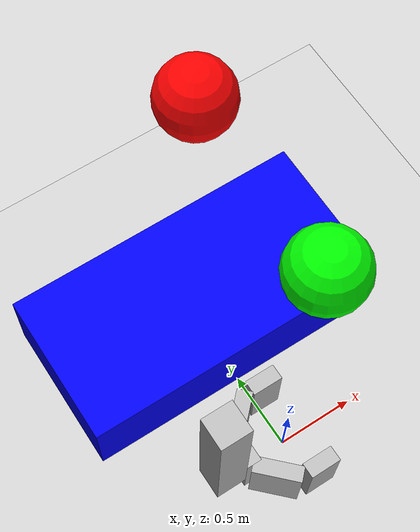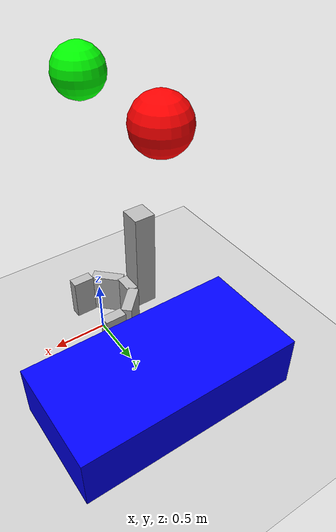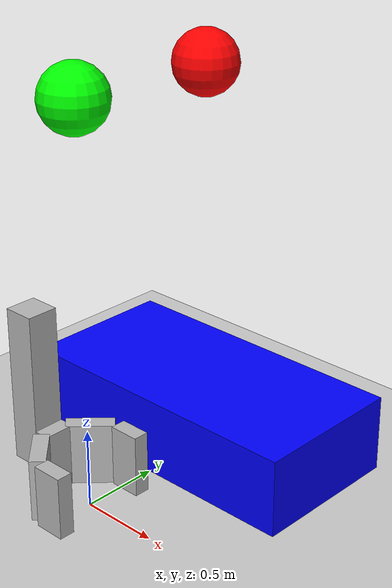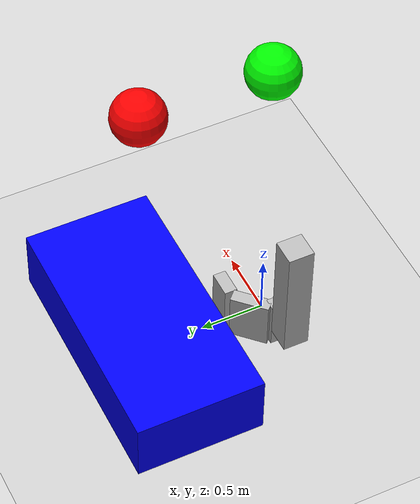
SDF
<?xml version="1.0"?>
<sdf version="1.4">
  <!-- Reference: http://gazebosim.org/tutorials?tut=model_population&cat=build_world -->
  <!-- Reference: http://gazebosim.org/tutorials?tut=plugins_model&cat=write_plugin   -->
  <world name="default">
    <!-- These do exactly what you think they do. -->
    <include>
      <uri>model://ground_plane</uri>
    </include>
    <include>
      <uri>model://sun</uri>
    </include>

    <model name="box">
      <pose>0 1 0.25 0 0 0</pose>
      <link name="link">
        <!-- Tell physics engine where box is. -->
        <collision name="collision">
		  <!-- Normally, one should not nest tags like this, but since
		       there is only one... -->
          <geometry><box><size>2 1 0.5</size></box></geometry>
        </collision>
        <!-- Tell GUI where box is. -->
        <visual name="visual">
          <geometry><box><size>2 1 0.5</size></box></geometry>
          <material>
            <!-- Do not really need this tag, but I like colorful objects, so I
                 put it here.  GZ uses Ogre conventions for colors. -->
            <ambient>0 0 1 1</ambient>
            <diffuse>0 0 1 1</diffuse>
            <specular>0.1 0.1 0.1 1</specular>
            <emissive>0 0 0 0</emissive>
          </material>
        </visual>
      </link>
      <!-- Finally, our plugin! -->
      <plugin name="jasGazeboGripper" filename="libjasGazeboGripper.so"/>
    </model>

	<model name="Galileo_cushion">
      <pose>0 1 2.5 0 0 0</pose>
      <link name="link">
        <!-- Tell physics engine where ball is. -->
        <collision name="collision">
          <geometry><sphere><radius>0.2</radius></sphere></geometry>
        </collision>
        <!-- Tell GUI where box is. -->
        <visual name="visual">
		  <geometry><sphere><radius>0.2</radius></sphere></geometry>
          <material>
            <ambient>1 0 0 1</ambient>
            <diffuse>1 0 0 1</diffuse>
            <specular>0.1 0.1 0.1 1</specular>
            <emissive>0 0 0 0</emissive>
          </material>
        </visual>
      </link>
	</model>

	<model name="Galileo_floor">
      <pose>0 0 2.5 0 0 0</pose>
      <link name="link">
        <!-- Tell physics engine where ball is. -->
        <collision name="collision">
          <geometry><sphere><radius>0.2</radius></sphere></geometry>
        </collision>
        <!-- Tell GUI where box is. -->
        <visual name="visual">
		  <geometry><sphere><radius>0.2</radius></sphere></geometry>
          <material>
            <ambient>0 1 0 1</ambient>
            <diffuse>0 1 0 1</diffuse>
            <specular>0.1 0.1 0.1 1</specular>
            <emissive>0 0 0 0</emissive>
          </material>
        </visual>
      </link>
	</model>

	<include>
	  <!-- Requires a few lines in jas497_476/package.xml, in the export tag. -->
	  <uri>model://jas497_476/models/foogrip</uri>
      <pose>-0.3 0 0.15 0 0 0</pose>
    </include>

  </world>
</sdf>

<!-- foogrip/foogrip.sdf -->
<!-- http://gazebosim.org/tutorials/?tut=simple_gripper -->

<sdf version="1.4">
  <model name="foogrip">

	<!-- Links -->
    <link name="riser">
      <pose>-0.15 0.0 0.5 0 0 0</pose>
      <inertial>
        <pose>0 0 -0.5 0 0 0</pose>
        <inertia>
          <ixx>0.01</ixx>
          <ixy>0</ixy>
          <ixz>0</ixz>
          <iyy>0.01</iyy>
          <iyz>0</iyz>
          <izz>0.01</izz>
        </inertia>
        <mass>10.0</mass>
      </inertial>
      <collision name="collision">
        <geometry>
          <box>
            <size>0.2 0.2 1.0</size>
          </box>
        </geometry>
      </collision>
      <visual name="visual">
        <geometry>
          <box>
            <size>0.2 0.2 1.0</size>
          </box>
        </geometry>
        <material>
          <script>Gazebo/Purple</script>
        </material>
      </visual>
    </link>
    <link name="palm">
      <pose>0.0 0.0 0.05 0 0 0</pose>
      <inertial>
        <inertia>
          <ixx>0.01</ixx>
          <ixy>0</ixy>
          <ixz>0</ixz>
          <iyy>0.01</iyy>
          <iyz>0</iyz>
          <izz>0.01</izz>
        </inertia>
        <mass>0.5</mass>
      </inertial>
      <collision name="collision">
        <geometry>
          <box>
            <size>0.1 0.2 0.4</size>
          </box>
        </geometry>
      </collision>
      <visual name="visual">
        <geometry>
          <box>
            <size>0.1 0.2 0.4</size>
          </box>
        </geometry>
        <material>
          <script>Gazebo/Red</script>
        </material>
      </visual>
    </link>
    <link name="left_finger">
      <pose>0.1 0.2 0.05 0 0 -0.78539</pose>
      <inertial>
        <inertia>
          <ixx>0.01</ixx>
          <ixy>0</ixy>
          <ixz>0</ixz>
          <iyy>0.01</iyy>
          <iyz>0</iyz>
          <izz>0.01</izz>
        </inertia>
        <mass>0.1</mass>
      </inertial>
      <collision name="collision">
        <geometry>
          <box>
            <size>0.1 0.3 0.4</size>
          </box>
        </geometry>
      </collision>
      <visual name="visual">
        <geometry>
          <box>
            <size>0.1 0.3 0.4</size>
          </box>
        </geometry>
        <material>
          <script>Gazebo/Blue</script>
        </material>
      </visual>
    </link>
    <link name="left_finger_tip">
      <pose>0.336 0.3 0.05 0 0 1.5707</pose>
      <inertial>
        <inertia>
          <ixx>0.01</ixx>
          <ixy>0</ixy>
          <ixz>0</ixz>
          <iyy>0.01</iyy>
          <iyz>0</iyz>
          <izz>0.01</izz>
        </inertia>
        <mass>0.1</mass>
      </inertial>
      <collision name="collision">
        <geometry>
          <box>
            <size>0.1 0.2 0.4</size>
          </box>
        </geometry>
      </collision>
      <visual name="visual">
        <geometry>
          <box>
            <size>0.1 0.2 0.4</size>
          </box>
        </geometry>
        <material>
          <script>Gazebo/Blue</script>
        </material>
      </visual>
    </link>
    <link name="right_finger">
      <pose>0.1 -0.2 0.05 0 0 .78539</pose>
      <inertial>
        <inertia>
          <ixx>0.01</ixx>
          <ixy>0</ixy>
          <ixz>0</ixz>
          <iyy>0.01</iyy>
          <iyz>0</iyz>
          <izz>0.01</izz>
        </inertia>
        <mass>0.1</mass>
      </inertial>
      <collision name="collision">
        <geometry>
          <box>
            <size>0.1 0.3 0.4</size>
          </box>
        </geometry>
      </collision>
      <visual name="visual">
        <geometry>
          <box>
            <size>0.1 0.3 0.4</size>
          </box>
        </geometry>
        <material>
          <script>Gazebo/Green</script>
        </material>
      </visual>
    </link>
    <link name="right_finger_tip">
      <pose>0.336 -0.3 0.05 0 0 1.5707</pose>
      <inertial>
        <inertia>
          <ixx>0.01</ixx>
          <ixy>0</ixy>
          <ixz>0</ixz>
          <iyy>0.01</iyy>
          <iyz>0</iyz>
          <izz>0.01</izz>
        </inertia>
        <mass>0.1</mass>
      </inertial>
      <collision name="collision">
        <geometry>
          <box>
            <size>0.1 0.2 0.4</size>
          </box>
        </geometry>
      </collision>
      <visual name="visual">
        <geometry>
          <box>
            <size>0.1 0.2 0.4</size>
          </box>
        </geometry>
        <material>
          <script>Gazebo/Green</script>
        </material>
      </visual>
    </link>

    <!-- Joints -->
    <joint name="palm_left_finger" type="revolute">
      <pose>0 -0.15 0 0 0 0</pose>
      <child>left_finger</child>
      <parent>palm</parent>
      <axis>
        <limit>
          <lower>-0.4</lower>
          <upper>0.4</upper>
        </limit>
        <xyz>0 0 1</xyz>
      </axis>
    </joint>
    <joint name="left_finger_tip" type="revolute">
      <pose>0 0.1 0 0 0 0</pose>
      <child>left_finger_tip</child>
      <parent>left_finger</parent>
      <axis>
        <limit>
          <lower>-0.4</lower>
          <upper>0.4</upper>
        </limit>
        <xyz>0 0 1</xyz>
      </axis>
    </joint>
    <joint name="palm_right_finger" type="revolute">
      <pose>0 0.15 0 0 0 0</pose>
      <child>right_finger</child>
      <parent>palm</parent>
      <axis>
        <limit>
          <lower>-0.4</lower>
          <upper>0.4</upper>
        </limit>
        <xyz>0 0 1</xyz>
      </axis>
    </joint>
    <joint name="right_finger_tip" type="revolute">
      <pose>0 0.1 0 0 0 0</pose>
      <child>right_finger_tip</child>
      <parent>right_finger</parent>
      <axis>
        <limit>
          <lower>-0.4</lower>
          <upper>0.4</upper>
        </limit>
        <xyz>0 0 1</xyz>
      </axis>
    </joint>
    <joint name="palm_riser" type="prismatic">
      <child>palm</child>
      <parent>riser</parent>
      <axis>
        <limit>
          <lower>0</lower>
          <upper>0.9</upper>
        </limit>
        <xyz>0 0 1</xyz>
      </axis>
    </joint>

	<gripper name="gripper">
	  <!-- The gripper tag only uses parallel grips. -->
	  <!-- http://answers.ros.org/question/201625/turtlebot-arm-on-gazebo-lets-fall-all-grasped-objects/ -->
	  <!-- http://answers.gazebosim.org/question/4324/gripper-tag-gazebophysicsgripper-doesnt-create-the-fixed-joint-between-the-gripper-and-the-object-within-it/ -->
	  <grasp_check>
		<attach_steps>5</attach_steps>
		<detach_steps>10</detach_steps>
	  </grasp_check>
	  <!-- These surfaces move to press against the object. -->
	  <!-- (these are link names; grep for "link" to see a full list) -->
	  <gripper_link>left_finger</gripper_link>
	  <gripper_link>right_finger</gripper_link>
	  <gripper_link>left_finger_tip</gripper_link>
	  <gripper_link>right_finger_tip</gripper_link>
	  <!-- This surface is held in place. -->
	  <palm_link>palm</palm_link>
	</gripper>

    <!-- In general, leave false.  Only real reason to change is when
         deciding on a geometry, since static models are easier to visually
         debug (since they do not move). -->
    <static>false</static>

  </model>
</sdf>
